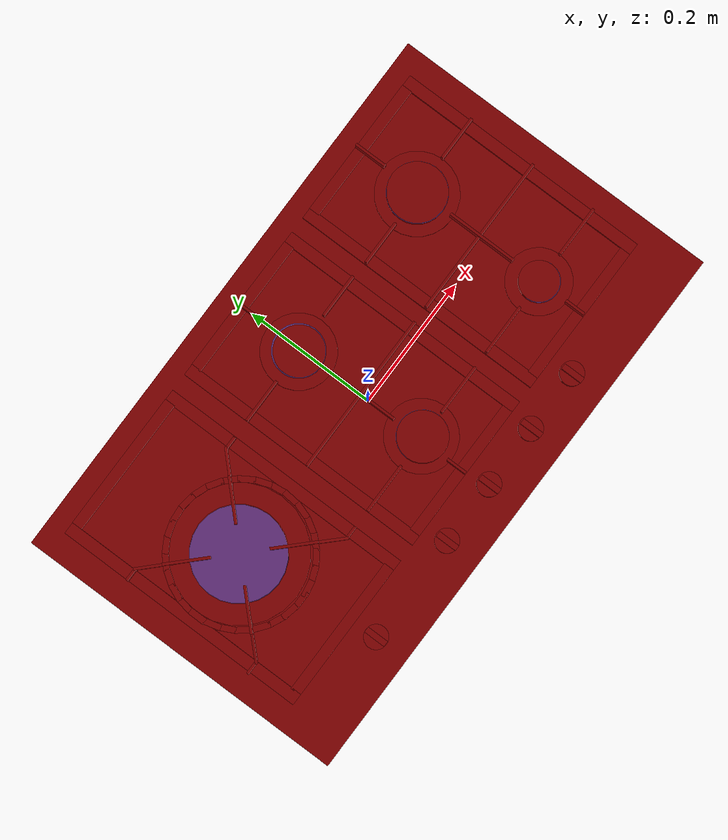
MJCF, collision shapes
<?xml version='1.0' encoding='UTF-8'?>
<mujoco model="model">
  <compiler angle="radian"/>
  <asset>
    <mesh file="visuals/knob_front_center.obj" name="knob_front_center_vis"/>
    <mesh file="visuals/knob_front_left.obj" name="knob_front_left_vis"/>
    <mesh file="visuals/knob_front_right.obj" name="knob_front_right_vis"/>
    <mesh file="visuals/knob_rear_center.obj" name="knob_rear_center_vis"/>
    <mesh file="visuals/knob_rear_right.obj" name="knob_rear_right_vis"/>
    <mesh file="visuals/Body001.obj" name="Body001_vis"/>
    <mesh file="visuals/Body002.obj" name="Body002_vis"/>
    <texture file="visuals/T_BC001.png" name="Body001_material" type="2d"/>
    <material name="Body001_material" rgba="1 1 1 1.0" texture="Body001_material" shininess="0.141421377658844" specular="3"/>
    <texture file="visuals/T_BC001.png" name="knob_front_center_material" type="2d"/>
    <material name="knob_front_center_material" rgba="1 1 1 1.0" texture="knob_front_center_material" shininess="0.141421377658844" specular="1"/>
    <texture file="visuals/T_BC001.png" name="knob_front_right_material" type="2d"/>
    <material name="knob_front_right_material" rgba="1 1 1 1.0" texture="knob_front_right_material" shininess="0.141421377658844" specular="1"/>
    <texture file="visuals/T_BC001.png" name="knob_front_left_material" type="2d"/>
    <material name="knob_front_left_material" rgba="1 1 1 1.0" texture="knob_front_left_material" shininess="0.141421377658844" specular="1"/>
    <texture file="visuals/T_BC001.png" name="knob_rear_center_material" type="2d"/>
    <material name="knob_rear_center_material" rgba="1 1 1 1.0" texture="knob_rear_center_material" shininess="0.141421377658844" specular="1"/>
    <texture file="visuals/T_BC001.png" name="knob_rear_right_material" type="2d"/>
    <material name="knob_rear_right_material" rgba="1 1 1 1.0" texture="knob_rear_right_material" shininess="0.141421377658844" specular="1"/>
    <texture file="visuals/T_BC001.png" name="Body002_material" type="2d"/>
    <material name="Body002_material" rgba="1 1 1 1.0" texture="Body002_material" shininess="0.141421377658844" specular="5"/>
  </asset>
  <default>
    <default class="visual">
      <geom conaffinity="0" contype="0" group="1" type="mesh"/>
    </default>
    <default class="collision">
      <geom group="0" rgba="0.5 0 0 0.5"/>
    </default>
    <default class="spawn">
      <geom group="0" rgba="1 1 1 0.5" contype="0" conaffinity="0"/>
      <site group="0" rgba="1 1 1 0.5"/>
    </default>
    <default class="region">
      <geom group="1" conaffinity="0" contype="0" rgba="0 1 0 0"/>
    </default>
  </default>
  <worldbody>
    <body>
      <body name="object">
        <site type="cylinder" rgba="0.3 0.4 1 0.5" size="0.038271475583314896 0.003057335037738085" pos="-0.001522901002317667 0.11902973055839539 -0.012076426297426224" name="burner_on_rear_center"/>
        <site type="cylinder" rgba="0.3 0.4 1 0.5" size="0.06837470084428787 0.007147748023271561" pos="-0.27523982524871826 0.015578135848045349 -0.0018543550977483392" name="burner_on_front_left"/>
        <site type="cylinder" rgba="0.3 0.4 1 0.5" size="0.029570624232292175 0.0028823113534599543" pos="0.2754146456718445 -0.08983660489320755 -0.014664530754089355" name="burner_on_front_right"/>
        <site type="cylinder" rgba="0.3 0.4 1 0.5" size="0.04360240325331688 0.003733100136741996" pos="0.2729633152484894 0.11940359324216843 -0.010723362676799297" name="burner_on_rear_right"/>
        <site type="cylinder" rgba="0.3 0.4 1 0.5" size="0.036978915333747864 0.004227067343890667" pos="0.006171226501464844 -0.08876118063926697 -0.012603274546563625" name="burner_on_front_center"/>
        <geom mesh="Body001_vis" type="mesh" solimp="0.998 0.998 0.001" solref="0.001 1" density="100" friction="0.95 0.3 0.1" class="visual" material="Body001_material"/>
        <geom class="collision" type="box" pos="6.161735655041412e-08 -1.5409113984787837e-08 -0.029685089364647865" size="0.4348243772983551 0.2561054229736328 0.0027121687307953835" quat="1.0 0.0 0.0 0.0"/>
        <body name="knob_front_center">
          <joint axis="0.0 0.0 1.0" pos="-0.08860774338245392 -0.20187780261039734 -0.019687943160533905" limited="true" name="knob_front_center_joint" range="0.0 3.141592653589793" type="hinge" damping="0.05" armature="0.001"/>
          <geom mesh="knob_front_center_vis" type="mesh" solimp="0.998 0.998 0.001" solref="0.001 1" density="100" friction="0.95 0.3 0.1" class="visual" material="knob_front_center_material"/>
          <geom class="collision" type="cylinder" pos="-0.08855149894952774 -0.20182903110980988 -0.020761961117386818" size="0.017744293436408043 0.005253618583083153" quat="1.0 0.0 0.0 0.0"/>
          <geom class="collision" type="box" pos="-0.08873892575502396 -0.20277908444404602 -0.011357824318110943" size="0.004383993800729513 0.016681840643286705 0.004383993800729513" quat="1.0 0.0 0.0 0.0"/>
        </body>
        <body name="knob_front_right">
          <joint axis="0.0 0.0 1.0" pos="0.2002972960472107 -0.20187780261039734 -0.019687943160533905" limited="true" name="knob_front_right_joint" range="0.0 3.141592653589793" type="hinge" damping="0.05" armature="0.001"/>
          <geom mesh="knob_front_right_vis" type="mesh" solimp="0.998 0.998 0.001" solref="0.001 1" density="100" friction="0.95 0.3 0.1" class="visual" material="knob_front_right_material"/>
          <geom class="collision" type="cylinder" pos="0.2003919929265976 -0.20188097655773163 -0.020761961117386818" size="0.017744293436408043 0.005253618583083153" quat="1.0 0.0 0.0 0.0"/>
          <geom class="collision" type="box" pos="0.2002849131822586 -0.20277908444404602 -0.011357824318110943" size="0.004383993800729513 0.016681818291544914 0.004383993800729513" quat="1.0 0.0 0.0 0.0"/>
        </body>
        <body name="knob_front_left">
          <joint axis="0.0 0.0 1.0" pos="-0.2530129849910736 -0.20291024446487427 -0.019687943160533905" limited="true" name="knob_front_left_joint" range="0.0 3.141592653589793" type="hinge" damping="0.05" armature="0.001"/>
          <geom mesh="knob_front_left_vis" type="mesh" solimp="0.998 0.998 0.001" solref="0.001 1" density="100" friction="0.95 0.3 0.1" class="visual" material="knob_front_left_material"/>
          <geom class="collision" type="cylinder" pos="-0.2530229389667511 -0.20293457806110382 -0.020761961117386818" size="0.017744293436408043 0.005253618583083153" quat="1.0 0.0 0.0 0.0"/>
          <geom class="collision" type="box" pos="-0.2528438866138458 -0.20277908444404602 -0.011357824318110943" size="0.004383993800729513 0.01668184995651245 0.004383993800729513" quat="1.0 0.0 0.0 0.0"/>
        </body>
        <body name="knob_rear_center">
          <joint axis="0.0 0.0 1.0" pos="0.008675701916217804 -0.20187780261039734 -0.019687943160533905" limited="true" name="knob_rear_center_joint" range="0.0 3.141592653589793" type="hinge" damping="0.05" armature="0.001"/>
          <geom mesh="knob_rear_center_vis" type="mesh" solimp="0.998 0.998 0.001" solref="0.001 1" density="100" friction="0.95 0.3 0.1" class="visual" material="knob_rear_center_material"/>
          <geom class="collision" type="cylinder" pos="0.008632715791463852 -0.20188097655773163 -0.020761961117386818" size="0.017744293436408043 0.005253618583083153" quat="1.0 0.0 0.0 0.0"/>
          <geom class="collision" type="box" pos="0.008787617087364197 -0.20277908444404602 -0.011357824318110943" size="0.004383993800729513 0.016681833192706108 0.004383993800729513" quat="1.0 0.0 0.0 0.0"/>
        </body>
        <body name="knob_rear_right">
          <joint axis="0.0 0.0 1.0" pos="0.10490594804286957 -0.20187780261039734 -0.019687943160533905" limited="true" name="knob_rear_right_joint" range="0.0 3.141592653589793" type="hinge" damping="0.05" armature="0.001"/>
          <geom mesh="knob_rear_right_vis" type="mesh" solimp="0.998 0.998 0.001" solref="0.001 1" density="100" friction="0.95 0.3 0.1" class="visual" material="knob_rear_right_material"/>
          <geom class="collision" type="cylinder" pos="0.10491403937339783 -0.20188097655773163 -0.020761961117386818" size="0.017744293436408043 0.005253618583083153" quat="1.0 0.0 0.0 0.0"/>
          <geom class="collision" type="box" pos="0.10534454882144928 -0.20277908444404602 -0.011357824318110943" size="0.004383993800729513 0.01668182574212551 0.004383993800729513" quat="1.0 0.0 0.0 0.0"/>
        </body>
        <body name="Body002">
          <geom mesh="Body002_vis" type="mesh" solimp="0.998 0.998 0.001" solref="0.001 1" density="100" friction="0.95 0.3 0.1" class="visual" material="Body002_material"/>
          <geom class="collision" type="box" pos="-0.2724567651748657 -0.15950994193553925 -0.021659236401319504" size="0.10746996104717255 0.008062111213803291 0.003434261539950967" quat="1.0 0.0 0.0 0.0"/>
          <geom class="collision" type="box" pos="-0.15776605904102325 0.029390675947070122 -0.021659236401319504" size="0.008937203325331211 0.19696272909641266 0.003434261539950967" quat="1.0 0.0 0.0 0.0"/>
          <geom class="collision" type="box" pos="-0.38715335726737976 0.029390675947070122 -0.021659236401319504" size="0.008937203325331211 0.19696272909641266 0.003434261539950967" quat="1.0 0.0 0.0 0.0"/>
          <geom class="collision" type="box" pos="-0.2724567651748657 0.21873784065246582 -0.021659236401319504" size="0.10746996104717255 0.008062111213803291 0.003434261539950967" quat="1.0 0.0 0.0 0.0"/>
          <geom class="collision" type="box" pos="0.0014255010755732656 0.21873784065246582 -0.021659236401319504" size="0.10746996104717255 0.008062111213803291 0.003434261539950967" quat="1.0 0.0 0.0 0.0"/>
          <geom class="collision" type="box" pos="-0.1132710725069046 0.029390675947070122 -0.021659236401319504" size="0.008937203325331211 0.19696272909641266 0.003434261539950967" quat="1.0 0.0 0.0 0.0"/>
          <geom class="collision" type="box" pos="0.11667639762163162 0.029390675947070122 -0.021659236401319504" size="0.008937203325331211 0.19696272909641266 0.003434261539950967" quat="1.0 0.0 0.0 0.0"/>
          <geom class="collision" type="box" pos="0.0014255010755732656 -0.15950994193553925 -0.021659236401319504" size="0.10746996104717255 0.008062111213803291 0.003434261539950967" quat="1.0 0.0 0.0 0.0"/>
          <geom class="collision" type="box" pos="0.27423083782196045 -0.15950994193553925 -0.021659236401319504" size="0.10790395736694336 0.008062111213803291 0.003434261539950967" quat="1.0 0.0 0.0 0.0"/>
          <geom class="collision" type="box" pos="0.3900780975818634 0.029390675947070122 -0.021659236401319504" size="0.008937203325331211 0.19696272909641266 0.003434261539950967" quat="1.0 0.0 0.0 0.0"/>
          <geom class="collision" type="box" pos="0.1591002494096756 0.029390675947070122 -0.021659236401319504" size="0.008937203325331211 0.19696272909641266 0.003434261539950967" quat="1.0 0.0 0.0 0.0"/>
          <geom class="collision" type="box" pos="0.27423083782196045 0.21873784065246582 -0.021659236401319504" size="0.10790395736694336 0.008062111213803291 0.003434261539950967" quat="1.0 0.0 0.0 0.0"/>
          <geom class="collision" type="box" pos="-0.08319006860256195 -0.08982863277196884 -0.007795816287398338" size="0.03901820629835129 0.0020138758700340986 0.011741054244339466" quat="1.0 0.0 0.0 0.0"/>
          <geom class="collision" type="box" pos="0.0017810872523114085 0.014180721715092659 -0.007795816287398338" size="0.12398937344551086 0.0020138758700340986 0.011741054244339466" quat="1.0 0.0 0.0 0.0"/>
          <geom class="collision" type="box" pos="-0.08803417533636093 0.11758925765752792 -0.007795816287398338" size="0.03417409956455231 0.0020138758700340986 0.011741054244339466" quat="1.0 0.0 0.0 0.0"/>
          <geom class="collision" type="box" pos="0.09145825356245041 0.12021714448928833 -0.007795816287398338" size="0.03417409956455231 0.0020138758700340986 0.011741054244339466" quat="1.0 0.0 0.0 0.0"/>
          <geom class="collision" type="box" pos="0.08661414682865143 -0.08982863277196884 -0.007795816287398338" size="0.03901820629835129 0.0020138758700340986 0.011741054244339466" quat="1.0 0.0 0.0 0.0"/>
          <geom class="collision" type="box" pos="0.0009355655638501048 -0.15076707303524017 -0.007795816287398338" size="0.0020138786640018225 0.015690725296735764 0.011741054244339466" quat="1.0 0.0 0.0 0.0"/>
          <geom class="collision" type="box" pos="0.0009355655638501048 0.010157659649848938 -0.001924237236380577" size="0.0020138786640018225 0.05389346554875374 0.012741649523377419" quat="1.0 0.0 0.0 0.0"/>
          <geom class="collision" type="box" pos="0.0009355655056424439 0.20191022753715515 -0.007795816287398338" size="0.0020138786640018225 0.02494983561336994 0.011741054244339466" quat="1.0 0.0 0.0 0.0"/>
          <geom class="collision" type="box" pos="0.27452147006988525 0.20191022753715515 -0.007795816287398338" size="0.0020138786640018225 0.02494983561336994 0.011741054244339466" quat="1.0 0.0 0.0 0.0"/>
          <geom class="collision" type="box" pos="0.27479854226112366 0.010157659649848938 -0.001924237236380577" size="0.0020138786640018225 0.05389346554875374 0.012741649523377419" quat="1.0 0.0 0.0 0.0"/>
          <geom class="collision" type="box" pos="0.2743634283542633 -0.15076707303524017 -0.007795816287398338" size="0.0020138786640018225 0.015690725296735764 0.011741054244339466" quat="1.0 0.0 0.0 0.0"/>
          <geom class="collision" type="box" pos="0.36020007729530334 -0.08982863277196884 -0.007795816287398338" size="0.03901820629835129 0.0020138758700340986 0.011741054244339466" quat="1.0 0.0 0.0 0.0"/>
          <geom class="collision" type="box" pos="0.36504417657852173 0.12021714448928833 -0.007795816287398338" size="0.03417409956455231 0.0020138758700340986 0.011741054244339466" quat="1.0 0.0 0.0 0.0"/>
          <geom class="collision" type="box" pos="0.1855517327785492 0.11758925765752792 -0.007795816287398338" size="0.03417409956455231 0.0020138758700340986 0.011741054244339466" quat="1.0 0.0 0.0 0.0"/>
          <geom class="collision" type="box" pos="0.27536699175834656 0.014180721715092659 -0.007795816287398338" size="0.12398937344551086 0.0020138758700340986 0.011741054244339466" quat="1.0 0.0 0.0 0.0"/>
          <geom class="collision" type="box" pos="0.19039583206176758 -0.08982863277196884 -0.007795816287398338" size="0.03901820629835129 0.0020138758700340986 0.011741054244339466" quat="1.0 0.0 0.0 0.0"/>
          <geom class="collision" type="box" pos="-0.22011858224868774 -0.03848875313997269 0.024102212861180305" size="0.03349786251783371 0.0020138761028647423 0.009213801473379135" quat="0.9238795042037964 0.0 -0.0 -0.3826834559440613"/>
          <geom class="collision" type="box" pos="-0.1857892870903015 -0.0728180930018425 0.001673343125730753" size="0.025544114410877228 0.0020138768013566732 0.008276935666799545" quat="0.9215493202209473 0.027162594720721245 0.06557631492614746 -0.381718248128891"/>
          <geom class="collision" type="box" pos="-0.20518885552883148 -0.05341849476099014 0.007756334729492664" size="0.0050131757743656635 0.002013877732679248 0.009169431403279305" quat="0.9026826620101929 -0.08150378614664078 -0.19676753878593445 -0.3739033639431"/>
          <geom class="collision" type="box" pos="-0.15873834490776062 -0.08951929956674576 -0.006809484213590622" size="0.009495718404650688 0.0020138719119131565 0.012727385386824608" quat="1.0 0.0 0.0 0.0"/>
          <geom class="collision" type="box" pos="-0.38672488927841187 0.11732326447963715 -0.006809484213590622" size="0.009495718404650688 0.0020138733088970184 0.012727385386824608" quat="1.0 0.0 0.0 0.0"/>
          <geom class="collision" type="box" pos="-0.3402743935585022 0.08122246712446213 0.007756334729492664" size="0.0050131757743656635 0.002013877499848604 0.009169431403279305" quat="0.3739035129547119 0.19676744937896729 -0.08150377869606018 0.9026826024055481"/>
          <geom class="collision" type="box" pos="-0.35967397689819336 0.10062206536531448 0.001673343125730753" size="0.025544114410877228 0.0020138768013566732 0.008276935666799545" quat="0.38171833753585815 -0.06557630002498627 0.027162598446011543 0.9215492606163025"/>
          <geom class="collision" type="box" pos="-0.32534465193748474 0.06629271805286407 0.024102212861180305" size="0.03349786251783371 0.0020138761028647423 0.009213801473379135" quat="0.38268354535102844 0.0 0.0 0.9238795042037964"/>
          <geom class="collision" type="box" pos="-0.38934898376464844 -0.09201204776763916 -0.006809484213590622" size="0.009495718404650688 0.0020138719119131565 0.012727385386824608" quat="1.0 0.0 0.0 0.0"/>
          <geom class="collision" type="box" pos="-0.34289848804473877 -0.055911242961883545 0.007756334729492664" size="0.0050131757743656635 0.002013877732679248 0.009169431403279305" quat="0.9026826620101929 -0.08150378614664078 0.19676753878593445 0.3739033639431"/>
          <geom class="collision" type="box" pos="-0.36229804158210754 -0.0753108412027359 0.001673343125730753" size="0.025544114410877228 0.002013877034187317 0.008276935666799545" quat="0.9215493202209473 0.02716257981956005 -0.06557630002498627 0.3817182183265686"/>
          <geom class="collision" type="box" pos="-0.3279687464237213 -0.04098150134086609 0.024102212861180305" size="0.03349786251783371 0.0020138761028647423 0.009213801473379135" quat="0.9238795042037964 0.0 0.0 0.3826834559440613"/>
          <geom class="collision" type="box" pos="-0.22117072343826294 0.06600575149059296 0.024102212861180305" size="0.03349786251783371 0.0020138761028647423 0.009213801473379135" quat="0.382683664560318 0.0 -0.0 -0.9238794445991516"/>
          <geom class="collision" type="box" pos="-0.1868414282798767 0.10033510625362396 0.0016733394004404545" size="0.025544114410877228 0.0020138768013566732 0.008276935666799545" quat="0.38171833753585815 -0.06557628512382507 -0.027162598446011543 -0.9215492606163025"/>
          <geom class="collision" type="box" pos="-0.20624099671840668 0.08093550056219101 0.007756331004202366" size="0.0050131757743656635 0.002013877499848604 0.009169431403279305" quat="0.3739036023616791 0.19676752388477325 0.08150382339954376 -0.9026825428009033"/>
          <geom class="collision" type="box" pos="-0.159790500998497 0.11703631281852722 -0.006809484213590622" size="0.009495719335973263 0.002013875637203455 0.012727385386824608" quat="1.0 0.0 0.0 0.0"/>
          <geom class="collision" type="cylinder" pos="-0.27475211024284363 0.016446055844426155 -0.008428353816270828" size="0.06854331493377686 0.011870629154145718" quat="1.0 0.0 0.0 0.0"/>
          <geom class="collision" type="cylinder" pos="-0.0015177438035607338 0.11816836148500443 -0.016414009034633636" size="0.03682274371385574 0.007835590280592442" quat="1.0 0.0 0.0 0.0"/>
          <geom class="collision" type="cylinder" pos="0.00605467613786459 -0.08914630860090256 -0.016309112310409546" size="0.03682274371385574 0.007940485142171383" quat="1.0 0.0 0.0 0.0"/>
          <geom class="collision" type="cylinder" pos="0.27529484033584595 -0.08914630860090256 -0.017642877995967865" size="0.02937150001525879 0.006606720387935638" quat="1.0 0.0 0.0 0.0"/>
          <geom class="collision" type="cylinder" pos="0.27295181155204773 0.11956239491701126 -0.015586393885314465" size="0.04329533874988556 0.00866320263594389" quat="1.0 0.0 0.0 0.0"/>
          <geom class="collision" type="box" pos="-0.2733967900276184 -0.09026195108890533 0.01595938764512539" size="0.012528009712696075 0.004465220496058464 0.0025164340622723103" quat="1.0 0.0 0.0 0.0"/>
          <geom class="collision" type="box" pos="-0.2961890995502472 -0.08777143806219101 0.01595938764512539" size="0.012528009712696075 0.004465220496058464 0.0025164340622723103" quat="0.9937880039215088 0.0 -0.0 -0.11128989607095718"/>
          <geom class="collision" type="box" pos="-0.33589205145835876 -0.06934906542301178 0.01595938764512539" size="0.012528009712696075 0.004465220496058464 0.0025164340622723103" quat="0.9474584460258484 0.0 -0.0 -0.3198789358139038"/>
          <geom class="collision" type="box" pos="-0.31619125604629517 -0.08107808977365494 0.01595938764512539" size="0.012528009712696075 0.004465220496058464 0.0025164340622723103" quat="0.9771721363067627 0.0 -0.0 -0.21244916319847107"/>
          <geom class="collision" type="box" pos="-0.3733103275299072 -0.01339639350771904 0.01595938764512539" size="0.012528009712696075 0.004465220496058464 0.0025164340622723103" quat="0.7909506559371948 0.0 -0.0 -0.6118799448013306"/>
          <geom class="collision" type="box" pos="-0.3766252398490906 0.009290666319429874 0.01595938764512539" size="0.004849942866712809 0.012659916654229164 0.0025164340622723103" quat="1.0 0.0 0.0 0.0"/>
          <geom class="collision" type="box" pos="-0.36589646339416504 -0.0331428237259388 0.01595938764512539" size="0.012528009712696075 0.004465220496058464 0.0025164340622723103" quat="0.8494387269020081 0.0 -0.0 -0.5276872515678406"/>
          <geom class="collision" type="box" pos="-0.3534611463546753 -0.052405595779418945 0.01595938764512539" size="0.012528009712696075 0.004465220496058464 0.0025164340622723103" quat="0.902888298034668 0.0 -0.0 -0.4298752546310425"/>
          <geom class="collision" type="box" pos="-0.3751034140586853 0.030719595029950142 0.01595938764512539" size="0.012528009712696075 0.004465220496058464 0.0025164340622723103" quat="0.6414406299591064 0.0 -0.0 -0.7671726942062378"/>
          <geom class="collision" type="box" pos="-0.3686155676841736 0.05271049961447716 0.01595938764512539" size="0.012528009712696075 0.004465220496058464 0.0025164340622723103" quat="0.5520773530006409 0.0 -0.0 -0.8337929248809814"/>
          <geom class="collision" type="box" pos="-0.3434527516365051 0.08852304518222809 0.01595938764512539" size="0.012528009712696075 0.004465220496058464 0.0025164340622723103" quat="0.3623361587524414 0.0 -0.0 -0.9320474863052368"/>
          <geom class="collision" type="box" pos="-0.35848549008369446 0.07121101021766663 0.01595938764512539" size="0.012528009712696075 0.004465220496058464 0.0025164340622723103" quat="0.46381255984306335 0.0 -0.0 -0.8859333395957947"/>
          <geom class="collision" type="box" pos="-0.2826772928237915 0.11536359041929245 0.01595938764512539" size="0.012528009712696075 0.004465220496058464 0.0025164340622723103" quat="0.04240655153989792 0.0 -0.0 -0.9991004467010498"/>
          <geom class="collision" type="box" pos="-0.259755939245224 0.11481337994337082 0.01595938764512539" size="0.012528009712696075 0.004465220496058464 0.0025164340622723103" quat="0.06904654949903488 0.0 0.0 0.9976134300231934"/>
          <geom class="collision" type="box" pos="-0.3033897578716278 0.11137841641902924 0.01595938764512539" size="0.012528009712696075 0.004465220496058464 0.0025164340622723103" quat="0.14447171986103058 0.0 -0.0 -0.9895089268684387"/>
          <geom class="collision" type="box" pos="-0.3244704604148865 0.10236202925443649 0.01595938764512539" size="0.012528009712696075 0.004465220496058464 0.0025164340622723103" quat="0.25369659066200256 0.0 -0.0 -0.9672838449478149"/>
          <geom class="collision" type="box" pos="-0.23835229873657227 0.10951302945613861 0.01595938764512539" size="0.012528009712696075 0.004465220496058464 0.0025164340622723103" quat="0.17542357742786407 0.0 0.0 0.9844930768013"/>
          <geom class="collision" type="box" pos="-0.21782302856445312 0.09930319339036942 0.01595938764512539" size="0.012528009712696075 0.004465220496058464 0.0025164340622723103" quat="0.28389793634414673 0.0 0.0 0.9588544964790344"/>
          <geom class="collision" type="box" pos="-0.18692688643932343 0.0683009922504425 0.01595938764512539" size="0.012528009712696075 0.004465220496058464 0.0025164340622723103" quat="0.48112502694129944 0.0 0.0 0.8766520023345947"/>
          <geom class="collision" type="box" pos="-0.20136384665966034 0.08611287921667099 0.01595938764512539" size="0.012528009712696075 0.004465220496058464 0.0025164340622723103" quat="0.38057389855384827 0.0 0.0 0.9247505068778992"/>
          <geom class="collision" type="box" pos="-0.17103028297424316 0.004057888872921467 0.01595938764512539" size="0.012528009712696075 0.004465220496058464 0.0025164340622723103" quat="0.7372356057167053 0.0 0.0 0.6756357550621033"/>
          <geom class="collision" type="box" pos="-0.175494983792305 -0.01843109354376793 0.01595938764512539" size="0.012528009712696075 0.004465220496058464 0.0025164340622723103" quat="0.8078470826148987 0.0 0.0 0.5893921256065369"/>
          <geom class="collision" type="box" pos="-0.17141202092170715 0.02514684945344925 0.01595938764512539" size="0.012528009712696075 0.004465220496058464 0.0025164340622723103" quat="0.664189875125885 0.0 0.0 0.747563898563385"/>
          <geom class="collision" type="box" pos="-0.17668774724006653 0.04745955392718315 0.01595938764512539" size="0.012528009712696075 0.004465220496058464 0.0025164340622723103" quat="0.5768676996231079 0.0 0.0 0.8168376088142395"/>
          <geom class="collision" type="box" pos="-0.18549099564552307 -0.04049677401781082 0.01595938764512539" size="0.012528009712696075 0.004465220496058464 0.0025164340622723103" quat="0.8715450763702393 0.0 0.0 0.49031537771224976"/>
          <geom class="collision" type="box" pos="-0.19945287704467773 -0.05868348479270935 0.01595938764512539" size="0.012528009712696075 0.004465220496058464 0.0025164340622723103" quat="0.9206981062889099 0.0 0.0 0.3902755677700043"/>
          <geom class="collision" type="box" pos="-0.23581083118915558 -0.08305161446332932 0.01595938764512539" size="0.012528009712696075 0.004465220496058464 0.0025164340622723103" quat="0.9825942516326904 0.0 0.0 0.1857648640871048"/>
          <geom class="collision" type="box" pos="-0.2155582308769226 -0.07230357825756073 0.01595938764512539" size="0.012528009712696075 0.004465220496058464 0.0025164340622723103" quat="0.9558166861534119 0.0 0.0 0.29396337270736694"/>
          <geom class="collision" type="box" pos="-0.2560184895992279 -0.08873813599348068 0.01595938764512539" size="0.012528009712696075 0.004465220496058464 0.0025164340622723103" quat="0.9964085221290588 0.0 0.0 0.08467620611190796"/>
          <geom class="collision" type="cylinder" pos="-0.27475211024284363 0.016446055844426155 -0.023225203156471252" size="0.0991811752319336 0.002379778539761901" quat="1.0 0.0 0.0 0.0"/>
          <geom class="collision" type="cylinder" pos="0.006284378468990326 -0.08698060363531113 -0.025798864662647247" size="0.05301951989531517 0.0012721639359369874" quat="1.0 0.0 0.0 0.0"/>
          <geom class="collision" type="cylinder" pos="0.2728148400783539 0.1197056695818901 -0.025025352835655212" size="0.06020509824156761 0.0014445765409618616" quat="1.0 0.0 0.0 0.0"/>
          <geom class="collision" type="cylinder" pos="0.27601951360702515 -0.08882081508636475 -0.025025352835655212" size="0.04788762703537941 0.0011490279575809836" quat="1.0 0.0 0.0 0.0"/>
          <geom class="collision" type="cylinder" pos="-0.0018195579759776592 0.11919114738702774 -0.023225203156471252" size="0.05427096411585808 0.001302191405557096" quat="1.0 0.0 0.0 0.0"/>
        </body>
        <geom class="region" name="reg_main" type="box" pos="9.53674295089968e-09 0.0 -0.02826034091413021" size="0.4348244369029999 0.2561054825782776 0.004136934410780668"/>
      </body>
    </body>
  </worldbody>
  <actuator>
    <motor name="knob_front_center_joint_actuator" joint="knob_front_center_joint" gear="10"/>
    <motor name="knob_front_right_joint_actuator" joint="knob_front_right_joint" gear="10"/>
    <motor name="knob_front_left_joint_actuator" joint="knob_front_left_joint" gear="10"/>
    <motor name="knob_rear_center_joint_actuator" joint="knob_rear_center_joint" gear="10"/>
    <motor name="knob_rear_right_joint_actuator" joint="knob_rear_right_joint" gear="10"/>
  </actuator>
</mujoco>
